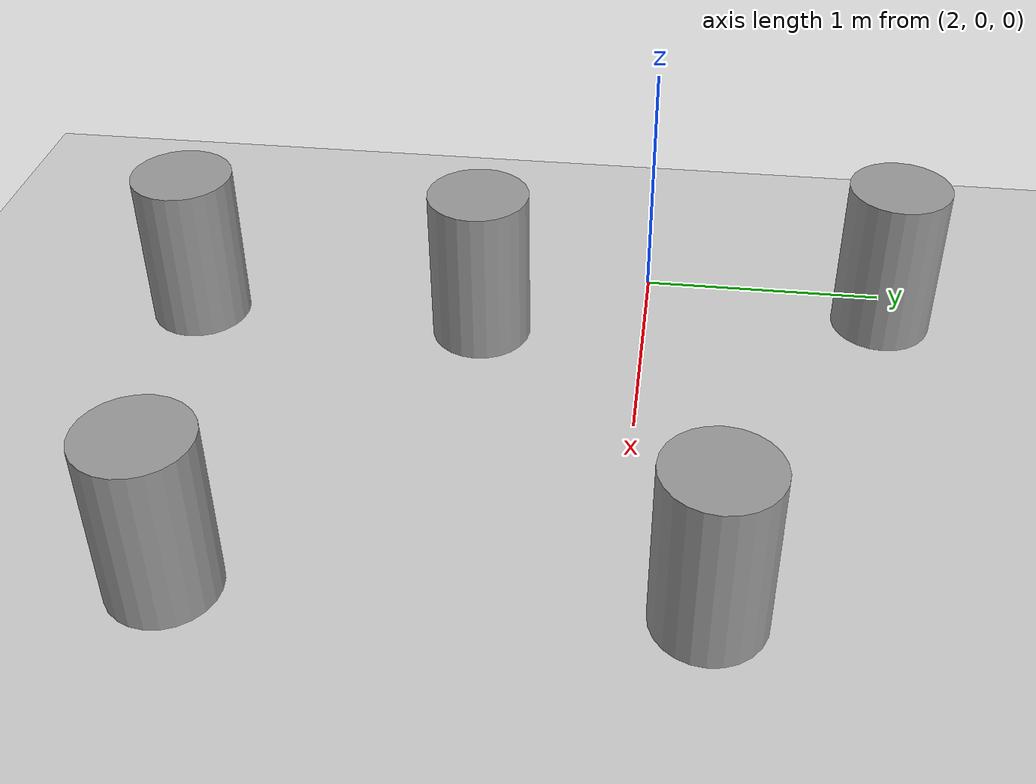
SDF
<sdf version="1.6">
 <world name="default">
  <light name="sun" type="directional">
   <pose>0 0 10 0 -0 0</pose>
   <diffuse>0.8 0.8 0.8 1</diffuse>
   <specular>0.2 0.2 0.2 1</specular>
   <attenuation>
    <range>1000</range>
    <constant>0.9</constant>
    <linear>0.01</linear>
    <quadratic>0.001</quadratic>
   </attenuation>
   <direction>-0.5 0.1 -0.9</direction>
  </light>
  <model name="ground_plane">
   <static>1</static>
   <link name="link">
    <collision name="collision">
     <geometry><plane><normal>0 0 1</normal><size>100 100</size></plane></geometry>
     <surface>
      <contact><collide_bitmask>65535</collide_bitmask></contact>
      <friction><ode><mu>100</mu><mu2>50</mu2></ode></friction>
     </surface>
    </collision>
    <visual name="visual">
     <cast_shadows>0</cast_shadows>
     <geometry><plane><normal>0 0 1</normal><size>100 100</size></plane></geometry>
     <material>
      <script><uri>file://media/materials/scripts/gazebo.material</uri><name>Gazebo/Grey</name></script>
     </material>
    </visual>
   </link>
  </model>
  <gravity>0 0 -9.8</gravity>
  <magnetic_field>6e-06 2.3e-05 -4.2e-05</magnetic_field>
  <atmosphere type="adiabatic"/>
  <physics name="default_physics" default="0" type="ode">
   <max_step_size>0.001</max_step_size>
   <real_time_factor>1</real_time_factor>
   <real_time_update_rate>1000</real_time_update_rate>
  </physics>
  <scene><ambient>0.4 0.4 0.4 1</ambient><background>0.7 0.7 0.7 1</background><shadows>1</shadows></scene>
  <audio><device>default</device></audio>
  <spherical_coordinates>
   <surface_model>EARTH_WGS84</surface_model>
   <latitude_deg>0</latitude_deg>
   <longitude_deg>0</longitude_deg>
   <elevation>0</elevation>
   <heading_deg>0</heading_deg>
  </spherical_coordinates>
  <model name="unit_cylinder">
   <pose>2.43845 -0.678761 0.330206 0 -0 0</pose>
   <link name="link">
    <inertial>
     <mass>1</mass>
     <inertia><ixx>0.145833</ixx><ixy>0</ixy><ixz>0</ixz><iyy>0.145833</iyy><iyz>0</iyz><izz>0.125</izz></inertia>
    </inertial>
    <collision name="collision">
     <geometry><cylinder><radius>0.204389</radius><length>0.66043</length></cylinder></geometry>
    </collision>
    <visual name="visual">
     <geometry><cylinder><radius>0.204389</radius><length>0.66043</length></cylinder></geometry>
     <material>
      <script><name>Gazebo/Grey</name><uri>file://media/materials/scripts/gazebo.material</uri></script>
     </material>
    </visual>
   </link>
  </model>
  <model name="unit_cylinder_clone">
   <pose>2.42873 -1.8993 0.330215 0 -0 0</pose>
   <link name="link">
    <inertial>
     <mass>1</mass>
     <inertia><ixx>0.145833</ixx><ixy>0</ixy><ixz>0</ixz><iyy>0.145833</iyy><iyz>0</iyz><izz>0.125</izz></inertia>
    </inertial>
    <collision name="collision">
     <geometry><cylinder><radius>0.204389</radius><length>0.66043</length></cylinder></geometry>
    </collision>
    <visual name="visual">
     <geometry><cylinder><radius>0.204389</radius><length>0.66043</length></cylinder></geometry>
     <material>
      <script><name>Gazebo/Grey</name><uri>file://media/materials/scripts/gazebo.material</uri></script>
     </material>
    </visual>
   </link>
  </model>
  <model name="unit_cylinder_clone_0">
   <pose>2.1861 0.994987 0.330214 0 -0 0</pose>
   <link name="link">
    <inertial>
     <mass>1</mass>
     <inertia><ixx>0.145833</ixx><ixy>0</ixy><ixz>0</ixz><iyy>0.145833</iyy><iyz>0</iyz><izz>0.125</izz></inertia>
    </inertial>
    <collision name="collision">
     <geometry><cylinder><radius>0.204389</radius><length>0.66043</length></cylinder></geometry>
    </collision>
    <visual name="visual">
     <geometry><cylinder><radius>0.204389</radius><length>0.66043</length></cylinder></geometry>
     <material>
      <script><name>Gazebo/Grey</name><uri>file://media/materials/scripts/gazebo.material</uri></script>
     </material>
    </visual>
   </link>
  </model>
  <model name="unit_cylinder_clone_1">
   <pose>3.95658 0.308404 0.330215 0 -0 0</pose>
   <link name="link">
    <inertial>
     <mass>1</mass>
     <inertia><ixx>0.145833</ixx><ixy>0</ixy><ixz>0</ixz><iyy>0.145833</iyy><iyz>0</iyz><izz>0.125</izz></inertia>
    </inertial>
    <collision name="collision">
     <geometry><cylinder><radius>0.204389</radius><length>0.66043</length></cylinder></geometry>
    </collision>
    <visual name="visual">
     <geometry><cylinder><radius>0.204389</radius><length>0.66043</length></cylinder></geometry>
     <material>
      <script><name>Gazebo/Grey</name><uri>file://media/materials/scripts/gazebo.material</uri></script>
     </material>
    </visual>
   </link>
  </model>
  <model name="unit_cylinder_clone_2">
   <pose>4.01756 -1.52177 0.330214 0 -0 0</pose>
   <link name="link">
    <inertial>
     <mass>1</mass>
     <inertia><ixx>0.145833</ixx><ixy>0</ixy><ixz>0</ixz><iyy>0.145833</iyy><iyz>0</iyz><izz>0.125</izz></inertia>
    </inertial>
    <collision name="collision">
     <geometry><cylinder><radius>0.204389</radius><length>0.66043</length></cylinder></geometry>
    </collision>
    <visual name="visual">
     <geometry><cylinder><radius>0.204389</radius><length>0.66043</length></cylinder></geometry>
     <material>
      <script><name>Gazebo/Grey</name><uri>file://media/materials/scripts/gazebo.material</uri></script>
     </material>
    </visual>
   </link>
  </model>
 </world>
</sdf>
